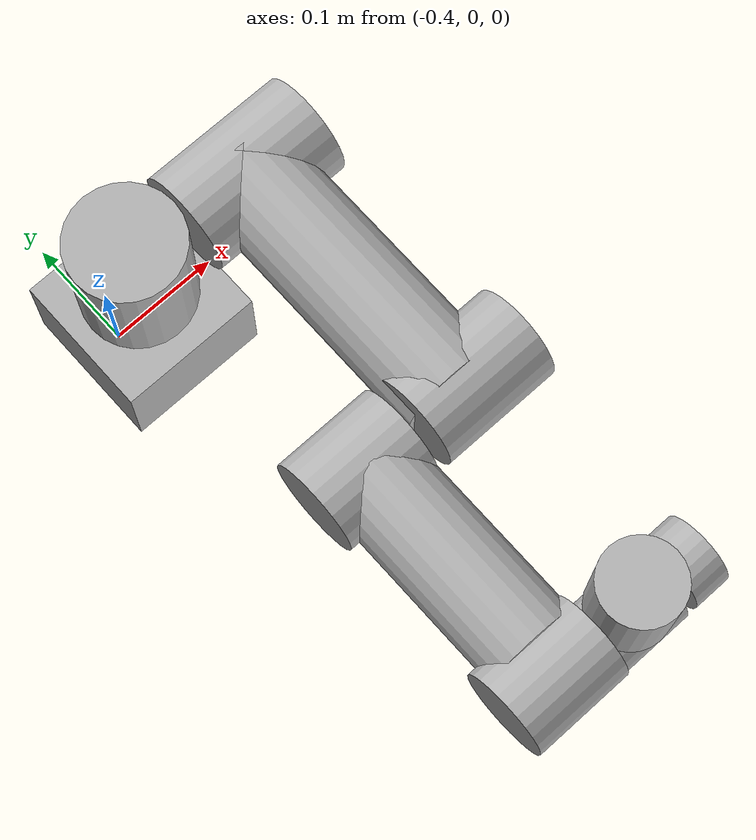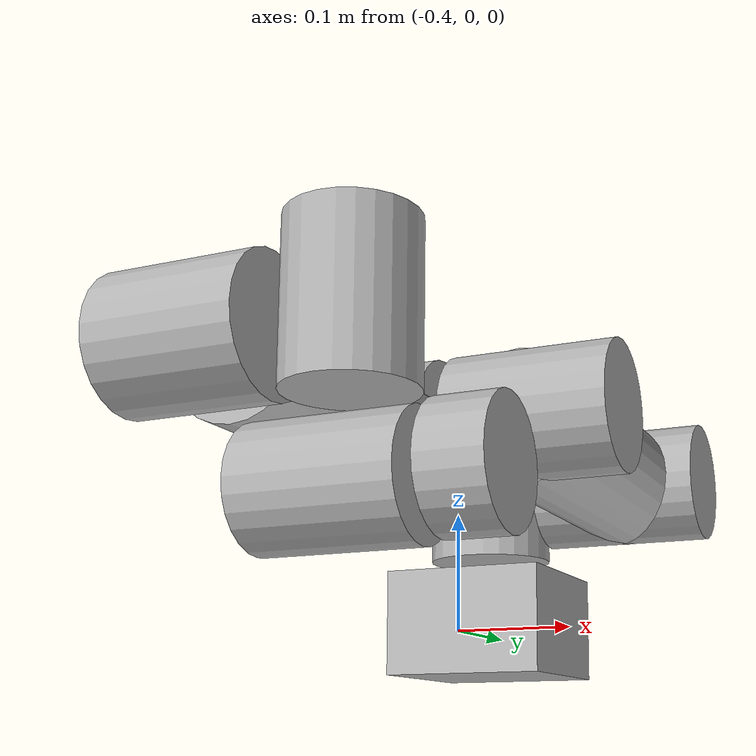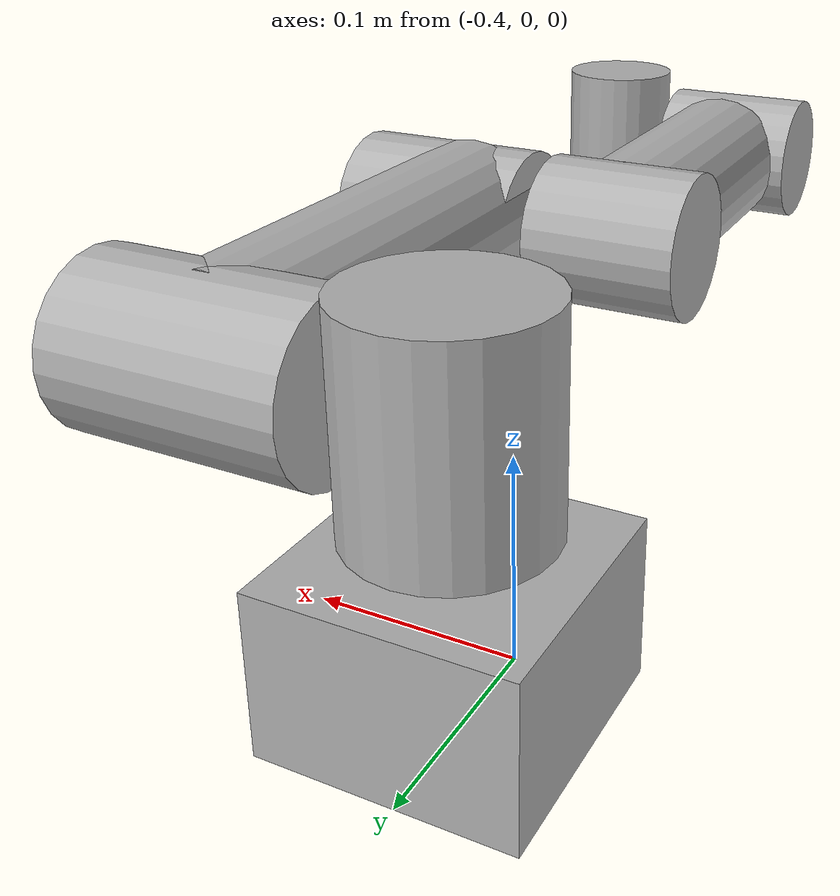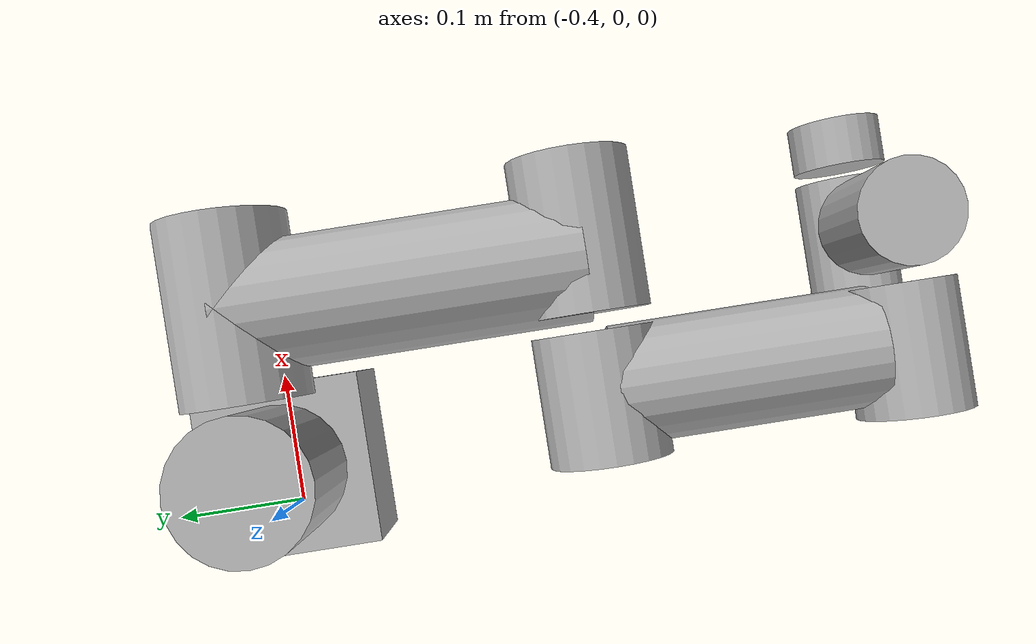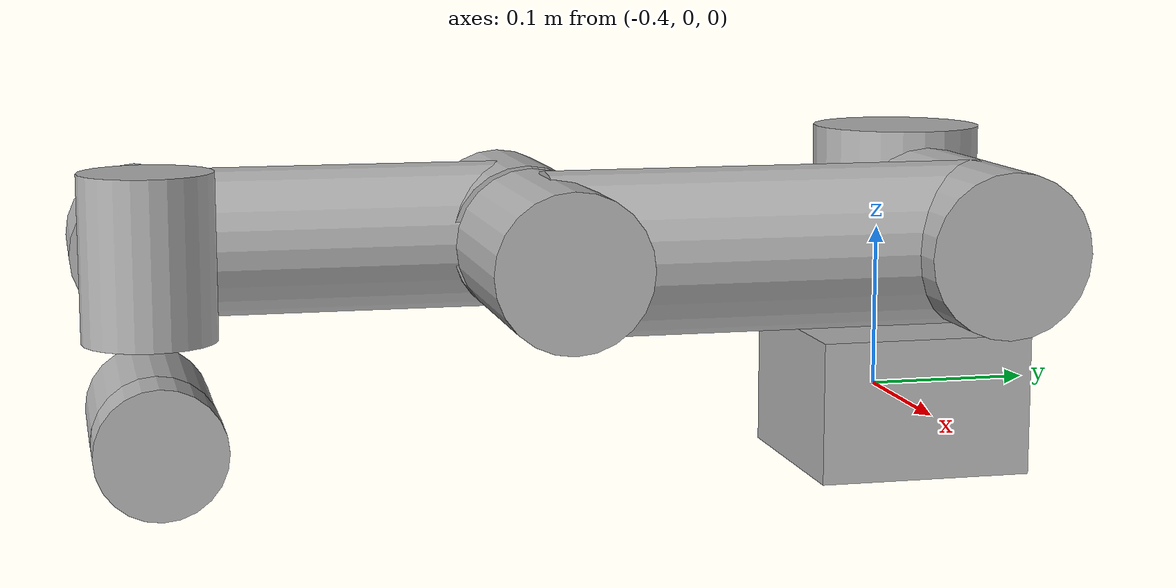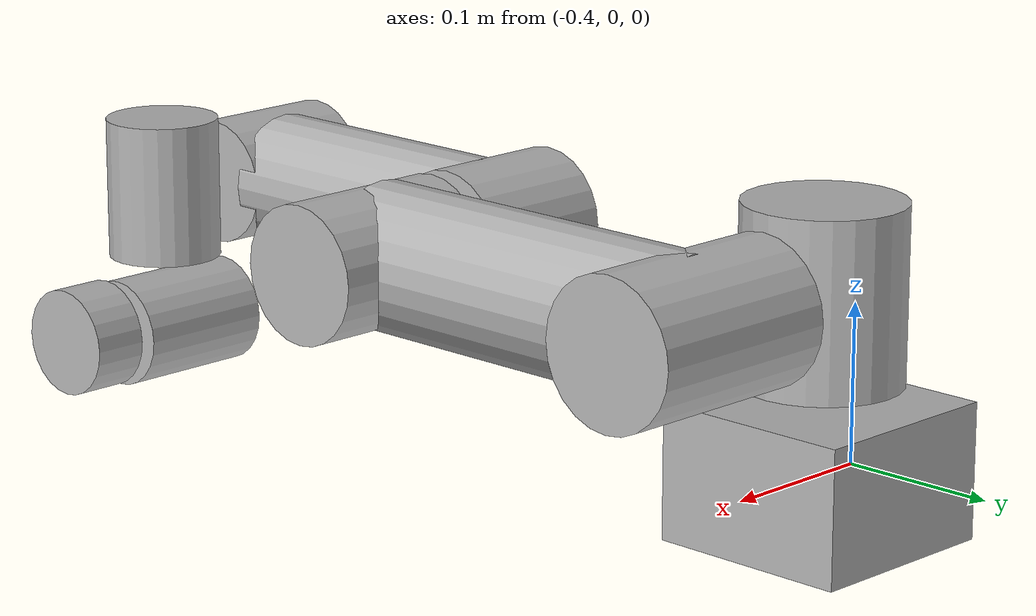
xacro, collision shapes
<?xml version="1.0"?>
<robot xmlns:xacro="http://ros.org/wiki/xacro" name="team_B_arm">

	<xacro:include filename="$(find ur_description)/urdf/ur3.urdf.xacro" />

	<link name="world" />

	<joint name="team_B_calibration_joint" type="fixed">
		<parent link="world" />
		<child link="team_B_base_link" />
		<origin xyz="-0.37 0.0 -0.04" rpy="0.0 0.0 -1.5708" />
	</joint>
	<xacro:ur3_robot prefix="team_B_" joint_limited="true" precise_collision="false" />

	<gazebo>
		<plugin name="team_B_arm_hwiface" filename="libgazebo_ros_control.so">
			<robotNamespace>team_B_arm</robotNamespace>
		</plugin>
	</gazebo>
</robot>

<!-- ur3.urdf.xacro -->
<robot xmlns:xacro="http://ros.org/wiki/xacro">

<!--
  Author: Felix Messmer
-->

  <xacro:include filename="$(find ur_description)/urdf/ur.transmission.xacro" />

  <!-- Inertia parameters -->
  <xacro:property name="base_mass" value="2.0" />  <!-- This mass might be incorrect -->
  <xacro:property name="shoulder_mass" value="2.0" />
  <xacro:property name="upper_arm_mass" value="3.42" />
  <xacro:property name="forearm_mass" value="1.26" />
  <xacro:property name="wrist_1_mass" value="0.8" />
  <xacro:property name="wrist_2_mass" value="0.8" />
  <xacro:property name="wrist_3_mass" value="0.35" />

  <xacro:property name="shoulder_cog" value="0.0 -0.02 0.0" />
  <xacro:property name="upper_arm_cog" value="0.13 0.0 0.1157" />
  <xacro:property name="forearm_cog" value="0.05 0.0 0.0238" />
  <xacro:property name="wrist_1_cog" value="0.0 0.0 0.01" />
  <xacro:property name="wrist_2_cog" value="0.0 0.0 0.01" />
  <xacro:property name="wrist_3_cog" value="0.0 0.0 -0.02" />

  <!-- Kinematic model -->
  <!-- Properties from urcontrol.conf -->
  <xacro:property name="ur3_d1" value="0.1519" />
  <xacro:property name="ur3_a2" value="-0.24365" />
  <xacro:property name="ur3_a3" value="-0.21325" />
  <xacro:property name="ur3_d4" value="0.11235" />
  <xacro:property name="ur3_d5" value="0.08535" />
  <xacro:property name="ur3_d6" value="0.0819" />

  <!-- Arbitrary offsets for shoulder/elbow joints -->
  <xacro:property name="shoulder_offset" value="0.1198" />  <!-- measured from model -->
  <xacro:property name="elbow_offset" value="-0.0925" /> <!-- measured from model -->

  <!-- link lengths used in model -->
  <xacro:property name="shoulder_height" value="${ur3_d1}" />
  <xacro:property name="upper_arm_length" value="${-ur3_a2}" />
  <xacro:property name="forearm_length" value="${-ur3_a3}" />
  <xacro:property name="wrist_1_length" value="${ur3_d4 - elbow_offset - shoulder_offset}" />
  <xacro:property name="wrist_2_length" value="${ur3_d5}" />
  <xacro:property name="wrist_3_length" value="${ur3_d6}" />

  <xacro:macro name="cylinder_inertial" params="radius length mass *origin">
    <inertial>
      <mass value="${mass}" />
      <xacro:insert_block name="origin" />
      <inertia ixx="${0.0833333 * mass * (3 * radius * radius + length * length)}" ixy="0.0" ixz="0.0"
        iyy="${0.0833333 * mass * (3 * radius * radius + length * length)}" iyz="0.0"
        izz="${0.5 * mass * radius * radius}" />
    </inertial>
  </xacro:macro>

  <xacro:macro name="ur3_robot" params="prefix joint_limited precise_collision:=true">

    <link name="${prefix}base_link" >
      <visual>
        <geometry>
          <mesh filename="package://ur_description/meshes/ur3/visual/base.dae"/>
        </geometry>
        <material name="LightGrey">
          <color rgba="0.7 0.7 0.7 1.0"/>
        </material>
      </visual>
      <xacro:if value="${precise_collision}">
        <collision>
          <geometry>
            <mesh filename="package://ur_description/meshes/ur3/collision/base.stl"/>
          </geometry>
        </collision>
      </xacro:if>
      <xacro:unless value="${precise_collision}">
        <collision>
          <origin xyz="0.0 0.0 0.0425" rpy="0 0 0" />
          <geometry>
            <box size="0.13 0.13 0.085" />
          </geometry>
        </collision>
      </xacro:unless>
      <xacro:cylinder_inertial radius="0.075" length="0.038" mass="${base_mass}">
        <origin xyz="0.0 0.0 0.0" rpy="0 0 0" />
      </xacro:cylinder_inertial>
    </link>

    <joint name="${prefix}shoulder_pan_joint" type="revolute">
      <parent link="${prefix}base_link" />
      <child link = "${prefix}shoulder_link" />
      <origin xyz="0.0 0.0 ${shoulder_height}" rpy="0.0 0.0 0.0" />
      <axis xyz="0 0 1" />
      <xacro:unless value="${joint_limited}">
        <limit lower="${-2.0 * pi}" upper="${2.0 * pi}" effort="330.0" velocity="2.16"/>
      </xacro:unless>
      <xacro:if value="${joint_limited}">
        <limit lower="${-pi}" upper="${pi}" effort="330.0" velocity="2.16"/>
      </xacro:if>
      <dynamics damping="0.0" friction="0.0"/>
    </joint>

    <link name="${prefix}shoulder_link">
      <visual>
        <geometry>
          <mesh filename="package://ur_description/meshes/ur3/visual/shoulder.dae"/>
        </geometry>
        <material name="LightGrey">
          <color rgba="0.7 0.7 0.7 1.0"/>
        </material>
      </visual>
      <xacro:if value="${precise_collision}">
        <collision>
          <geometry>
            <mesh filename="package://ur_description/meshes/ur3/collision/shoulder.stl"/>
          </geometry>
        </collision>
      </xacro:if>
      <xacro:unless value="${precise_collision}">
        <collision>
          <origin xyz="0.0 0.0 0.0" rpy="0 0 0" />
          <geometry>
            <cylinder radius="0.05" length="0.11"/>
          </geometry>
        </collision>
      </xacro:unless>
      <xacro:cylinder_inertial radius="0.075" length="0.178" mass="${shoulder_mass}">
        <origin xyz="0.0 0.0 0.0" rpy="0 0 0" />
      </xacro:cylinder_inertial>
    </link>

    <joint name="${prefix}shoulder_lift_joint" type="revolute">
      <parent link="${prefix}shoulder_link" />
      <child link = "${prefix}upper_arm_link" />
      <origin xyz="0.0 ${shoulder_offset} 0.0" rpy="0.0 ${pi / 2.0} 0.0" />
      <axis xyz="0 1 0" />
      <xacro:unless value="${joint_limited}">
        <limit lower="${-2.0 * pi}" upper="${2.0 * pi}" effort="330.0" velocity="2.16"/>
      </xacro:unless>
      <xacro:if value="${joint_limited}">
        <limit lower="${-pi}" upper="${pi}" effort="330.0" velocity="2.16"/>
      </xacro:if>
      <dynamics damping="0.0" friction="0.0"/>
    </joint>

    <link name="${prefix}upper_arm_link">
      <visual>
        <geometry>
          <mesh filename="package://ur_description/meshes/ur3/visual/upperarm.dae"/>
        </geometry>
        <material name="LightGrey">
          <color rgba="0.7 0.7 0.7 1.0"/>
        </material>
      </visual>
      <xacro:if value="${precise_collision}">
        <collision>
          <geometry>
            <mesh filename="package://ur_description/meshes/ur3/collision/upperarm.stl"/>
          </geometry>
        </collision>
      </xacro:if>
      <xacro:unless value="${precise_collision}">
        <collision>
          <origin xyz="0 0 0" rpy="${0.5*pi} 0 0" />
          <geometry>
            <cylinder radius="0.046" length="0.13"/>
          </geometry>
        </collision>
        <collision>
          <origin xyz="0.0 0.0 0.12" rpy="0 0 0" />
          <geometry>
            <cylinder radius="0.046" length="0.25"/>
          </geometry>
        </collision>
        <collision>
          <origin xyz="0 0.015 ${upper_arm_length}" rpy="${0.5*pi} 0 0" />
          <geometry>
            <cylinder radius="0.043" length="0.11"/>
          </geometry>
        </collision>
      </xacro:unless>
      <xacro:cylinder_inertial radius="0.075" length="${-ur3_a2}" mass="${upper_arm_mass}">
        <origin xyz="0.0 0.0 ${-ur3_a2/2.0}" rpy="0 0 0" />
      </xacro:cylinder_inertial>
    </link>

    <joint name="${prefix}elbow_joint" type="revolute">
      <parent link="${prefix}upper_arm_link" />
      <child link = "${prefix}forearm_link" />
      <origin xyz="0.0 ${elbow_offset} ${upper_arm_length}" rpy="0.0 0.0 0.0" />
      <axis xyz="0 1 0" />
      <xacro:unless value="${joint_limited}">
        <limit lower="${-2.0 * pi}" upper="${2.0 * pi}" effort="150.0" velocity="3.15"/>
      </xacro:unless>
      <xacro:if value="${joint_limited}">
        <limit lower="${-pi}" upper="${pi}" effort="150.0" velocity="3.15"/>
      </xacro:if>
      <dynamics damping="0.0" friction="0.0"/>
    </joint>

    <link name="${prefix}forearm_link">
      <visual>
         <geometry>
          <mesh filename="package://ur_description/meshes/ur3/visual/forearm.dae"/>
        </geometry>
        <material name="LightGrey">
          <color rgba="0.7 0.7 0.7 1.0"/>
        </material>
      </visual>
      <xacro:if value="${precise_collision}">
      <collision>
        <geometry>
          <mesh filename="package://ur_description/meshes/ur3/collision/forearm.stl"/>
        </geometry>
      </collision>
      </xacro:if>
      <xacro:unless value="${precise_collision}">
        <collision>
          <origin xyz="0.0 -0.005 0.0" rpy="1.5708 0 0 " />
          <geometry>
            <cylinder radius="0.043" length="0.09"/>
          </geometry>
          </collision>
      <collision>
        <origin xyz="0.0 0.0 ${0.5*0.18 + 0.01}" rpy="0 0 0" />
        <geometry>
          <cylinder radius="0.042" length="0.18"/>
        </geometry>
      </collision>
      <collision>
        <origin xyz="0.0 -0.005 ${forearm_length}" rpy="1.5708 0 0 " />
        <geometry>
          <cylinder radius="0.04" length="0.09"/>
        </geometry>
      </collision>
      </xacro:unless>
      <xacro:cylinder_inertial radius="0.075" length="${-ur3_a3}" mass="${forearm_mass}">
        <origin xyz="0.0 0.0 ${-ur3_a3/2.0}" rpy="0 0 0" />
      </xacro:cylinder_inertial>
    </link>

    <joint name="${prefix}wrist_1_joint" type="revolute">
      <parent link="${prefix}forearm_link" />
      <child link = "${prefix}wrist_1_link" />
      <origin xyz="0.0 0.0 ${forearm_length}" rpy="0.0 ${pi / 2.0} 0.0" />
      <axis xyz="0 1 0" />
      <xacro:unless value="${joint_limited}">
        <limit lower="${-2.0 * pi}" upper="${2.0 * pi}" effort="54.0" velocity="3.2"/>
      </xacro:unless>
      <xacro:if value="${joint_limited}">
        <limit lower="${-pi}" upper="${pi}" effort="54.0" velocity="3.2"/>
      </xacro:if>
      <dynamics damping="0.0" friction="0.0"/>
    </joint>

    <link name="${prefix}wrist_1_link">
      <visual>
        <geometry>
          <mesh filename="package://ur_description/meshes/ur3/visual/wrist1.dae"/>
        </geometry>
        <material name="LightGrey">
          <color rgba="0.7 0.7 0.7 1.0"/>
        </material>
      </visual>
      <xacro:if value="${precise_collision}">
      <collision>
        <geometry>
          <mesh filename="package://ur_description/meshes/ur3/collision/wrist1.stl"/>
        </geometry>
      </collision>
      </xacro:if>
      <xacro:unless value="${precise_collision}">
        <collision>
          <origin xyz="0.0 ${wrist_1_length} -0.005" rpy="0 0 0" />
          <geometry>
            <cylinder radius="0.036" length="0.09"/>
          </geometry>
          </collision>
      </xacro:unless>
      <xacro:cylinder_inertial radius="0.075" length="0.12" mass="${wrist_1_mass}">
        <origin xyz="0.0 0.0 0.0" rpy="0 0 0" />
      </xacro:cylinder_inertial>
    </link>

    <joint name="${prefix}wrist_2_joint" type="revolute">
      <parent link="${prefix}wrist_1_link" />
      <child link = "${prefix}wrist_2_link" />
      <origin xyz="0.0 ${wrist_1_length} 0.0" rpy="0.0 0.0 0.0" />
      <axis xyz="0 0 1" />
      <xacro:unless value="${joint_limited}">
        <limit lower="${-2.0 * pi}" upper="${2.0 * pi}" effort="54.0" velocity="3.2"/>
      </xacro:unless>
      <xacro:if value="${joint_limited}">
        <limit lower="${-pi}" upper="${pi}" effort="54.0" velocity="3.2"/>
      </xacro:if>
      <dynamics damping="0.0" friction="0.0"/>
    </joint>

    <link name="${prefix}wrist_2_link">
      <visual>
        <geometry>
          <mesh filename="package://ur_description/meshes/ur3/visual/wrist2.dae"/>
        </geometry>
        <material name="LightGrey">
          <color rgba="0.7 0.7 0.7 1.0"/>
        </material>
      </visual>
      <xacro:if value="${precise_collision}">
        <collision>
          <geometry>
            <mesh filename="package://ur_description/meshes/ur3/collision/wrist2.stl"/>
          </geometry>
        </collision>
      </xacro:if>
      <xacro:unless value="${precise_collision}">
        <collision>
          <origin xyz="0.0 -0.005 ${wrist_2_length}" rpy="${0.5*pi} 0 0" />
          <geometry>
            <cylinder radius="0.034" length="0.09"/>
          </geometry>
        </collision>
      </xacro:unless>
      <xacro:cylinder_inertial radius="0.075" length="0.12" mass="${wrist_2_mass}">
        <origin xyz="0.0 0.0 0.0" rpy="0 0 0" />
      </xacro:cylinder_inertial>
    </link>

    <joint name="${prefix}wrist_3_joint" type="revolute">
      <parent link="${prefix}wrist_2_link" />
      <child link = "${prefix}wrist_3_link" />
      <origin xyz="0.0 0.0 ${wrist_2_length}" rpy="0.0 0.0 0.0" />
      <axis xyz="0 1 0" />
      <xacro:unless value="${joint_limited}">
        <limit lower="${-2.0 * pi}" upper="${2.0 * pi}" effort="54.0" velocity="3.2"/>
      </xacro:unless>
      <xacro:if value="${joint_limited}">
        <limit lower="${-pi}" upper="${pi}" effort="54.0" velocity="3.2"/>
      </xacro:if>
      <dynamics damping="0.0" friction="0.0"/>
    </joint>

    <link name="${prefix}wrist_3_link">
      <visual>
        <geometry>
          <mesh filename="package://ur_description/meshes/ur3/visual/wrist3.dae"/>
        </geometry>
        <material name="LightGrey">
          <color rgba="0.7 0.7 0.7 1.0"/>
        </material>
      </visual>
      <xacro:if value="${precise_collision}">
      <collision>
        <geometry>
          <mesh filename="package://ur_description/meshes/ur3/collision/wrist3.stl"/>
        </geometry>
      </collision>
      </xacro:if>
      <xacro:unless value="${precise_collision}">
        <collision>
          <origin xyz="0.0 ${wrist_3_length - 0.015} -0.0025" rpy="1.5708 0 0" />
          <geometry>
            <cylinder radius="0.034" length="0.035"/>
          </geometry>
        </collision>
      </xacro:unless>
      <xacro:cylinder_inertial radius="0.075" length="0.12" mass="${wrist_3_mass}">
        <origin xyz="0.0 0.0 0.0" rpy="0 0 0" />
      </xacro:cylinder_inertial>
    </link>
    <joint name="${prefix}ee_fixed_joint" type="fixed">
      <parent link="${prefix}wrist_3_link" />
      <child link="${prefix}ee_link" />
      <origin xyz="0.0 ${wrist_3_length} 0.0" rpy="0.0 0.0 ${pi/2.0}" />
    </joint>

    <link name="${prefix}ee_link" />

    <xacro:ur_arm_transmission prefix="${prefix}" />

    <!-- ROS base_link to UR 'Base' Coordinates transform -->
    <link name="${prefix}base"/>
    <joint name="${prefix}base_link-base_fixed_joint" type="fixed">
      <!-- NOTE: this rotation is only needed as long as base_link itself is
                 not corrected wrt the real robot (ie: rotated over 180
                 degrees)
      -->
      <origin xyz="0 0 0" rpy="0 0 ${-pi}"/>
      <parent link="${prefix}base_link"/>
      <child link="${prefix}base"/>
    </joint>

    <!-- Frame coincident with all-zeros TCP on UR controller -->
    <link name="${prefix}tool0"/>
    <joint name="${prefix}wrist_3_link-tool0_fixed_joint" type="fixed">
      <origin xyz="0 ${wrist_3_length} 0" rpy="${pi/-2.0} 0 0"/>
      <parent link="${prefix}wrist_3_link"/>
      <child link="${prefix}tool0"/>
    </joint>

  </xacro:macro>
</robot>
